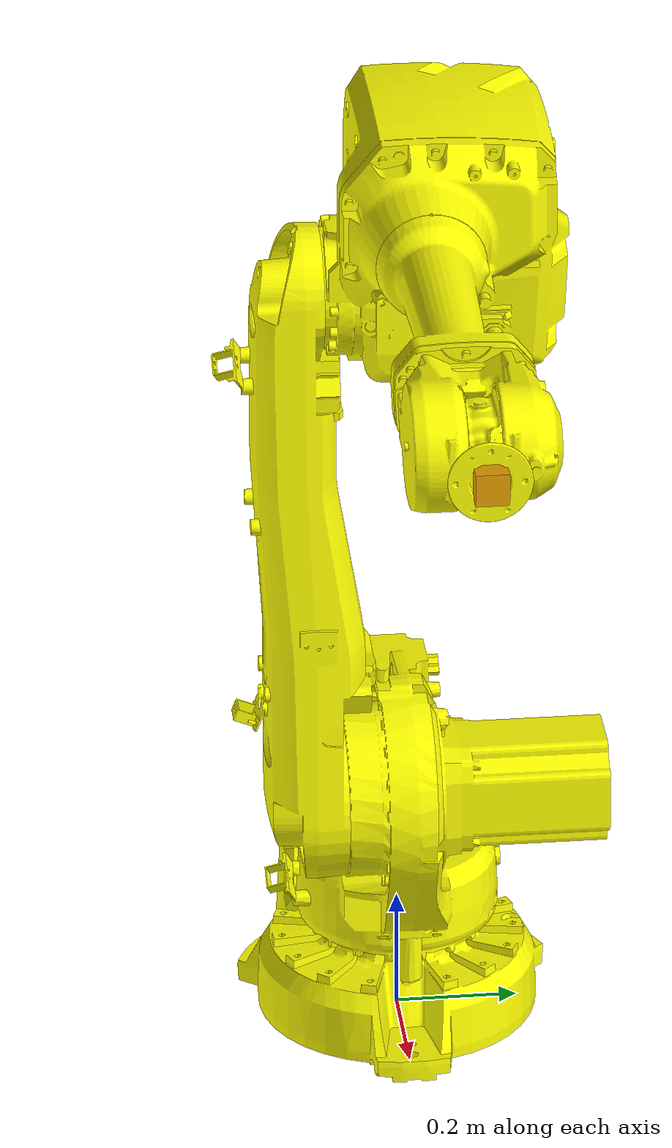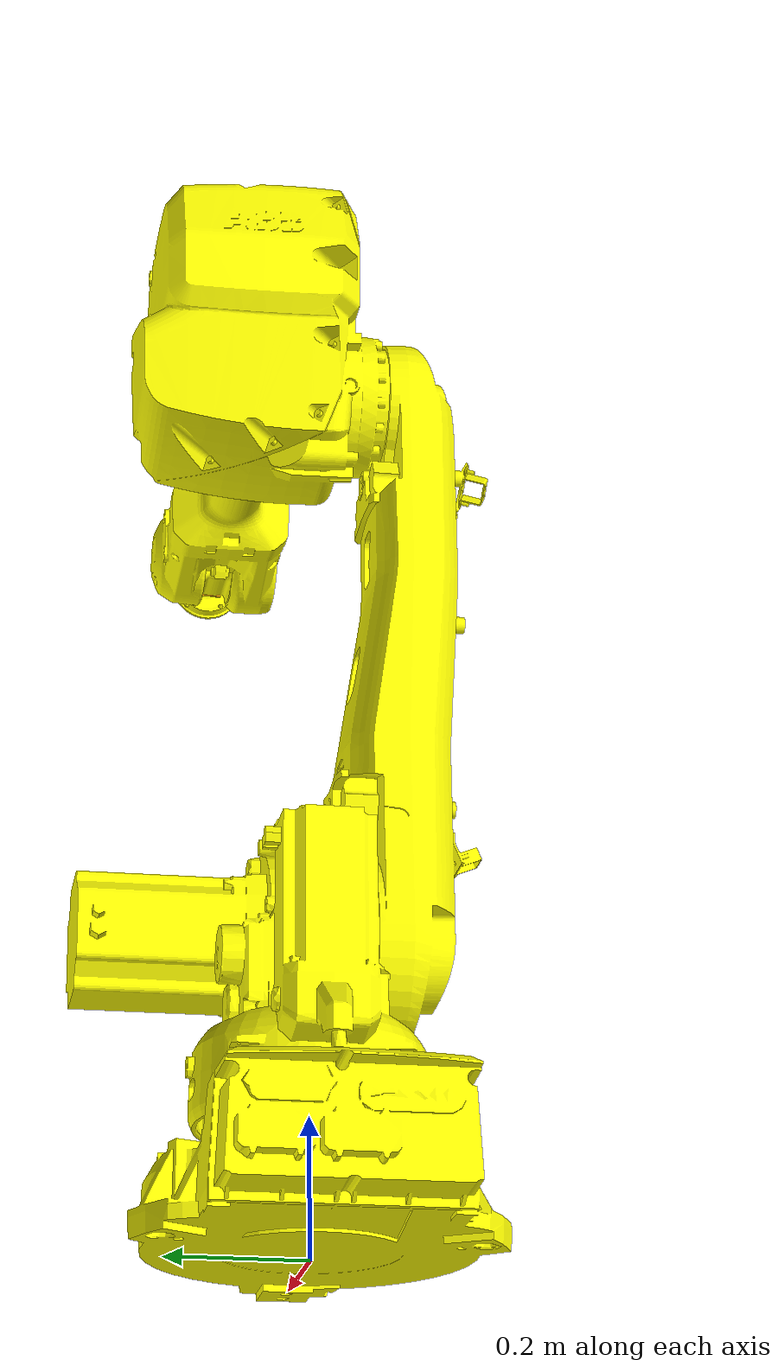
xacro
<?xml version="1.0"?>
<robot xmlns:xacro="http://www.ros.org/wiki/xacro" name="abb_irb4600_60_205">
    <xacro:arg name="initial_positions_file" default="initial_positions.yaml" />

    <!-- Import abb_irb4600_60_205 urdf file -->
    <xacro:include filename="$(find warehouse_manage)/models/abb_irb4600_60_205/model.urdf" />

    <!-- Import control_xacro -->
    <xacro:include filename="abb_irb4600_60_205.ros2_control.xacro" />

    <xacro:abb_irb4600_60_205_ros2_control name="FakeSystem" initial_positions_file="$(arg initial_positions_file)"/>

</robot>

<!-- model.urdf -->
<!-- |    This document was autogenerated by xacro from urdf/irb4600_60_205.xacro      | -->
<!-- |    EDITING THIS FILE BY HAND IS NOT RECOMMENDED                                 | -->
<robot name="abb_irb4600_60_205">
  <!-- link list -->

  <link name="base_link">
    <collision name="collision">
      <geometry>
        <mesh filename="package://abb_irb4600_support/meshes/irb4600/collision/base_link.stl"/>
      </geometry>
    </collision>
    <visual name="visual">
      <geometry>
        <mesh filename="package://abb_irb4600_support/meshes/irb4600/visual/base_link.dae"/>
      </geometry>
      <material name="yellow">
        <color rgba="1 1 0 1"/>
      </material>
    </visual>
    <inertial>
      <mass value="10.0" />
      <inertia ixx="0.2083" ixy="0.0" ixz="0.0" iyy="0.2083" iyz="0.0" izz="0.3333"/>
    </inertial>
  </link>
  <link name="link_1">
    <collision name="collision">
      <geometry>
        <mesh filename="package://abb_irb4600_support/meshes/irb4600/collision/link_1.stl"/>
      </geometry>
    </collision>
    <visual name="visual">
      <geometry>
        <mesh filename="package://abb_irb4600_support/meshes/irb4600/visual/link_1.dae"/>
      </geometry>
      <material name="yellow"/>
    </visual>
    <inertial>
      <mass value="1.0" />
      <inertia ixx="0.2083" ixy="0.0" ixz="0.0" iyy="0.2083" iyz="0.0" izz="0.3333"/>
    </inertial>
  </link>
  <link name="link_2">
    <collision name="collision">
      <geometry>
        <mesh filename="package://abb_irb4600_support/meshes/irb4600_60_205/collision/link_2.stl"/>
      </geometry>
    </collision>
    <visual name="visual">
      <geometry>
        <mesh filename="package://abb_irb4600_support/meshes/irb4600_60_205/visual/link_2.dae"/>
      </geometry>
      <material name="yellow"/>
    </visual>
    <inertial>
      <mass value="1.0" />
      <inertia ixx="0.2083" ixy="0.0" ixz="0.0" iyy="0.2083" iyz="0.0" izz="0.3333"/>
    </inertial>
  </link>
  <link name="link_3">
    <collision name="collision">
      <geometry>
        <mesh filename="package://abb_irb4600_support/meshes/irb4600_60_205/collision/link_3.stl"/>
      </geometry>
    </collision>
    <visual name="visual">
      <geometry>
        <mesh filename="package://abb_irb4600_support/meshes/irb4600_60_205/visual/link_3.dae"/>
      </geometry>
      <material name="yellow"/>
    </visual>
    <inertial>
      <mass value="1.0" />
      <inertia ixx="0.2083" ixy="0.0" ixz="0.0" iyy="0.2083" iyz="0.0" izz="0.3333"/>
    </inertial>
  </link>
  <link name="link_4">
    <collision name="collision">
      <geometry>
        <mesh filename="package://abb_irb4600_support/meshes/irb4600_60_205/collision/link_4.stl"/>
      </geometry>
    </collision>
    <visual name="visual">
      <geometry>
        <mesh filename="package://abb_irb4600_support/meshes/irb4600_60_205/visual/link_4.dae"/>
      </geometry>
      <material name="yellow"/>
    </visual>
    <inertial>
      <mass value="1.0" />
      <inertia ixx="0.2083" ixy="0.0" ixz="0.0" iyy="0.2083" iyz="0.0" izz="0.3333"/>
    </inertial>
  </link>
  <link name="link_5">
    <collision name="collision">
      <geometry>
        <mesh filename="package://abb_irb4600_support/meshes/irb4600_60_205/collision/link_5.stl"/>
      </geometry>
    </collision>
    <visual name="visual">
      <geometry>
        <mesh filename="package://abb_irb4600_support/meshes/irb4600_60_205/visual/link_5.dae"/>
      </geometry>
      <material name="yellow"/>
    </visual>
    <inertial>
      <mass value="1.0" />
      <inertia ixx="0.2083" ixy="0.0" ixz="0.0" iyy="0.2083" iyz="0.0" izz="0.3333"/>
    </inertial>
  </link>
  <link name="link_6">
    <collision name="collision">
      <geometry>
        <mesh filename="package://abb_irb4600_support/meshes/irb4600_60_205/collision/link_6.stl"/>
      </geometry>
    </collision>
    <visual name="visual">
      <geometry>
        <mesh filename="package://abb_irb4600_support/meshes/irb4600_60_205/visual/link_6.dae"/>
      </geometry>
      <material name="yellow"/>
    </visual>
    <inertial>
      <mass value="1.0" />
      <inertia ixx="0.2083" ixy="0.0" ixz="0.0" iyy="0.2083" iyz="0.0" izz="0.3333"/>
    </inertial>
  </link>
  <!-- end of link list -->

  <!-- joint list -->
  <joint name="joint_1" type="revolute">
    <origin rpy="0 0 0" xyz="0 0 0.495"/>
    <axis xyz="0 0 1"/>
    <parent link="base_link"/>
    <child link="link_1"/>
    <limit effort="1000.0" lower="-15.0" upper="15.0" velocity="30.0"/>
    <dynamics damping="1.0" friction="100.0"/>
  </joint>
  <joint name="joint_2" type="revolute">
    <origin rpy="0 0 0" xyz="0.175 0 0"/>
    <axis xyz="0 1 0"/>
    <parent link="link_1"/>
    <child link="link_2"/>
    <limit effort="1000.0" lower="-15.0" upper="15.0" velocity="30.0"/>
    <dynamics damping="1.0" friction="100.0"/>
  </joint>
  <joint name="joint_3" type="revolute">
    <origin rpy="0 0 0" xyz="0 0 0.9"/>
    <axis xyz="0 1 0"/>
    <parent link="link_2"/>
    <child link="link_3"/>
    <limit effort="1000.0" lower="-15.0" upper="15.0" velocity="30.0"/>
    <dynamics damping="1.0" friction="100.0"/>
  </joint>
  <joint name="joint_4" type="revolute">
    <origin rpy="0 0 0" xyz="0 0 0.175"/>
    <axis xyz="1 0 0"/>
    <parent link="link_3"/>
    <child link="link_4"/>
    <limit effort="1000.0" lower="-15.0" upper="15.0" velocity="30.0"/>
    <dynamics damping="1.0" friction="100.0"/>
  </joint>
  <joint name="joint_5" type="revolute">
    <origin rpy="0 0 0" xyz="0.960 0 0 "/>
    <axis xyz="0 1 0"/>
    <parent link="link_4"/>
    <child link="link_5"/>
    <limit effort="1000.0" lower="-15.0" upper="15.0" velocity="30.0"/>
    <dynamics damping="1.0" friction="0.0"/>
  </joint>
  <joint name="joint_6" type="revolute">
    <origin rpy="0 0 0" xyz="0.135 0 0 "/>
    <axis xyz="1 0 0"/>
    <parent link="link_5"/>
    <child link="link_6"/>
    <limit effort="1000.0" lower="-15.0" upper="15.0" velocity="30.0"/>
    <dynamics damping="1.0" friction="100.0"/>
  </joint>
  <!-- end of joint list -->
  <!-- ROS-Industrial 'base' frame: base_link to ABB World Coordinates transform -->
  <!-- ROS-Industrial 'flange' frame: attachment point for EEF models -->
  <link name="flange"/>
  <joint name="joint_6-flange" type="fixed">
    <origin rpy="0 0 0" xyz="0 0 0"/>
    <parent link="link_6"/>
    <child link="flange"/>
  </joint>
  <!-- ROS-Industrial 'tool0' frame: all-zeros tool frame -->
  <link name="tool0">
    <collision>
      <geometry>
        <box size="0.05 0.05 0.05"/>
      </geometry>
    </collision>
    <visual>
      <geometry>
        <box size="0.05 0.05 0.05"/>
      </geometry>
    </visual>
    <inertial>
      <mass value="1.0" />
      <inertia ixx="0.2083" ixy="0.0" ixz="0.0" iyy="0.2083" iyz="0.0" izz="0.3333"/>
    </inertial>
  </link>
  <joint name="link_6-tool0" type="fixed">
    <origin rpy="0 1.5707963267948966 0" xyz="0 0 0"/>
    <parent link="flange"/>
    <child link="tool0"/>
  </joint>

  <ros2_control name="GazeboSimSystem" type="system">
    <hardware>
      <plugin>gz_ros2_control/GazeboSimSystem</plugin>
    </hardware>
    <!-- Revolute joints -->
    <joint name="joint_1">
      <command_interface name="position">
        <param name="min">-15</param>
        <param name="max">15</param>
      </command_interface>
      <state_interface name="position">
        <param name="initial_value">0.0</param>
      </state_interface>
      <state_interface name="velocity"/>
      <state_interface name="effort"/>
    </joint>
    <joint name="joint_2">
      <command_interface name="position" />
      <state_interface name="position">
        <param name="initial_value">0.0</param>
      </state_interface>
      <state_interface name="velocity"/>
      <state_interface name="effort"/>
    </joint>
    <joint name="joint_3">
      <command_interface name="position" />
      <state_interface name="position">
        <param name="initial_value">0.0</param>
      </state_interface>
      <state_interface name="velocity"/>
      <state_interface name="effort"/>
    </joint>
    <joint name="joint_4">
      <command_interface name="position" />
      <state_interface name="position">
        <param name="initial_value">0.0</param>
      </state_interface>
      <state_interface name="velocity"/>
      <state_interface name="effort"/>
    </joint>
    <joint name="joint_5">
      <command_interface name="position" />
      <state_interface name="position">
        <param name="initial_value">0.0</param>
      </state_interface>
      <state_interface name="velocity"/>
      <state_interface name="effort"/>
    </joint>
    <joint name="joint_6">
      <command_interface name="position" />
      <state_interface name="position">
        <param name="initial_value">0.0</param>
      </state_interface>
      <state_interface name="velocity"/>
      <state_interface name="effort"/>
    </joint>
  </ros2_control>

  <gazebo>
    <plugin filename="gz_ros2_control-system" name="gz_ros2_control::GazeboSimROS2ControlPlugin">
      <parameters>/home/yjy/astar_proj/ros2_simulation/src/warehouse_manage/config/abb_irb4600_60_205.yaml</parameters>
    </plugin>
  </gazebo>
</robot>
